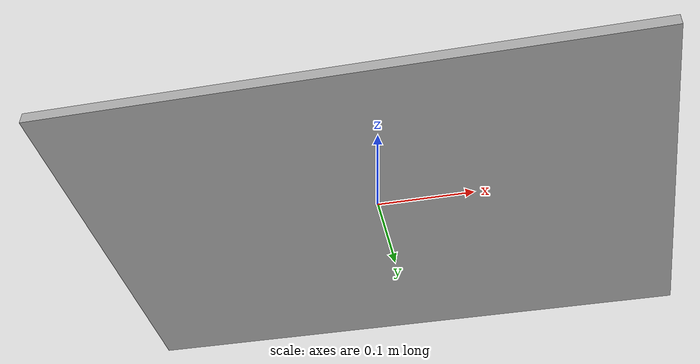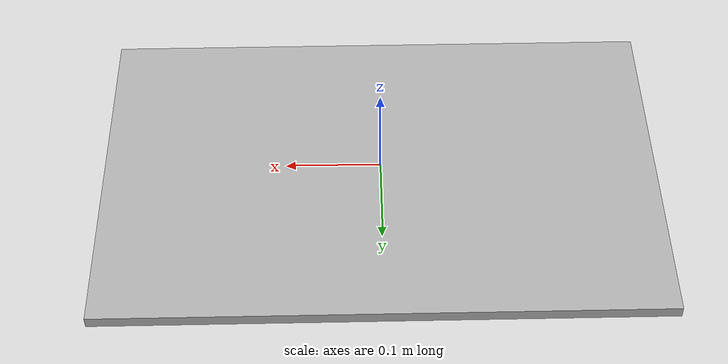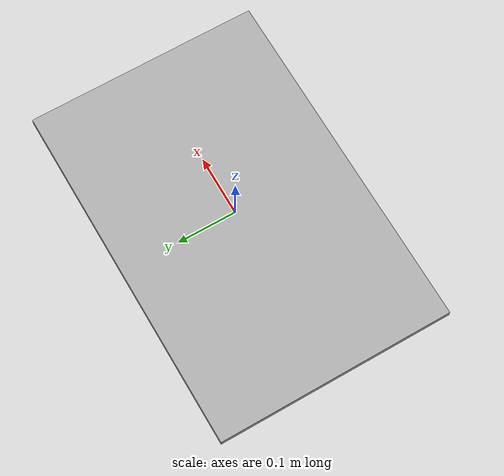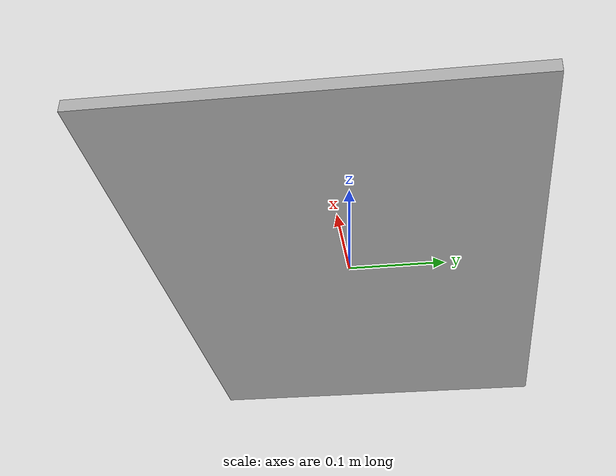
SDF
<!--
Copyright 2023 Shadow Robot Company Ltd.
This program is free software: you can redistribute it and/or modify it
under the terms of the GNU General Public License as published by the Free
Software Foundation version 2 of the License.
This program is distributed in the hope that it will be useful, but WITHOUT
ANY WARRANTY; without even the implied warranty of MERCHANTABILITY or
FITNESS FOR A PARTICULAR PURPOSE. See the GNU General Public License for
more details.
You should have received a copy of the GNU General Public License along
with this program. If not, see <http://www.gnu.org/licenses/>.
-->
<?xml version="1.0" ?>

<sdf version="1.4">
  <model name="bare_metal_table">
    <static>true</static>
    <link name="link">
      <inertial>
        <mass>20</mass>
      </inertial>
      <collision name="collision">
        <pose>0.0 0.0 0.0 0 0.0 0.0</pose>
        <geometry>
          <mesh>
            <uri>model://bare_metal_table/meshes/bare_metal_table.stl</uri>
          </mesh>
        </geometry>
      </collision>
      <visual name="visual">
        <pose>0.0 0.0 0.0 0 0.0 0.0</pose>
        <geometry>
          <mesh>
            <uri>model://bare_metal_table/meshes/bare_metal_table.stl</uri>
          </mesh>
        </geometry>
      </visual>
    </link>
  </model>
</sdf>
